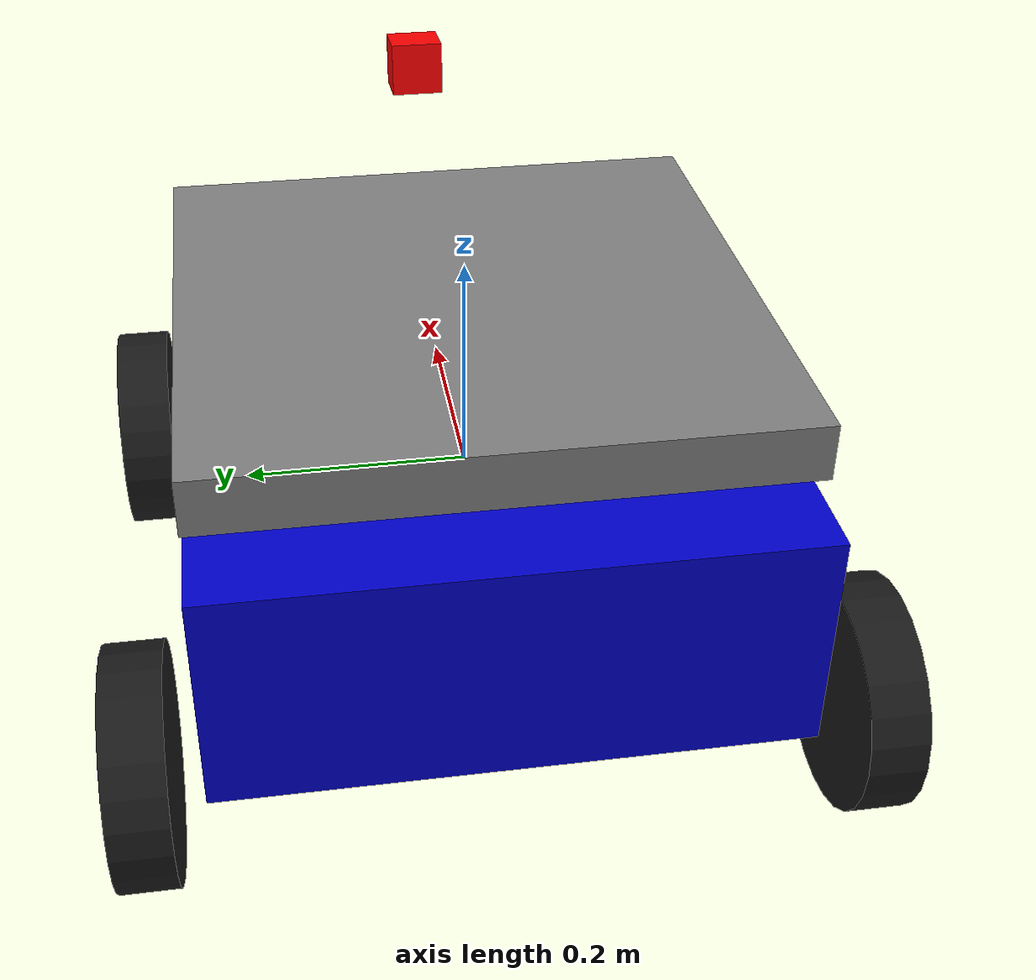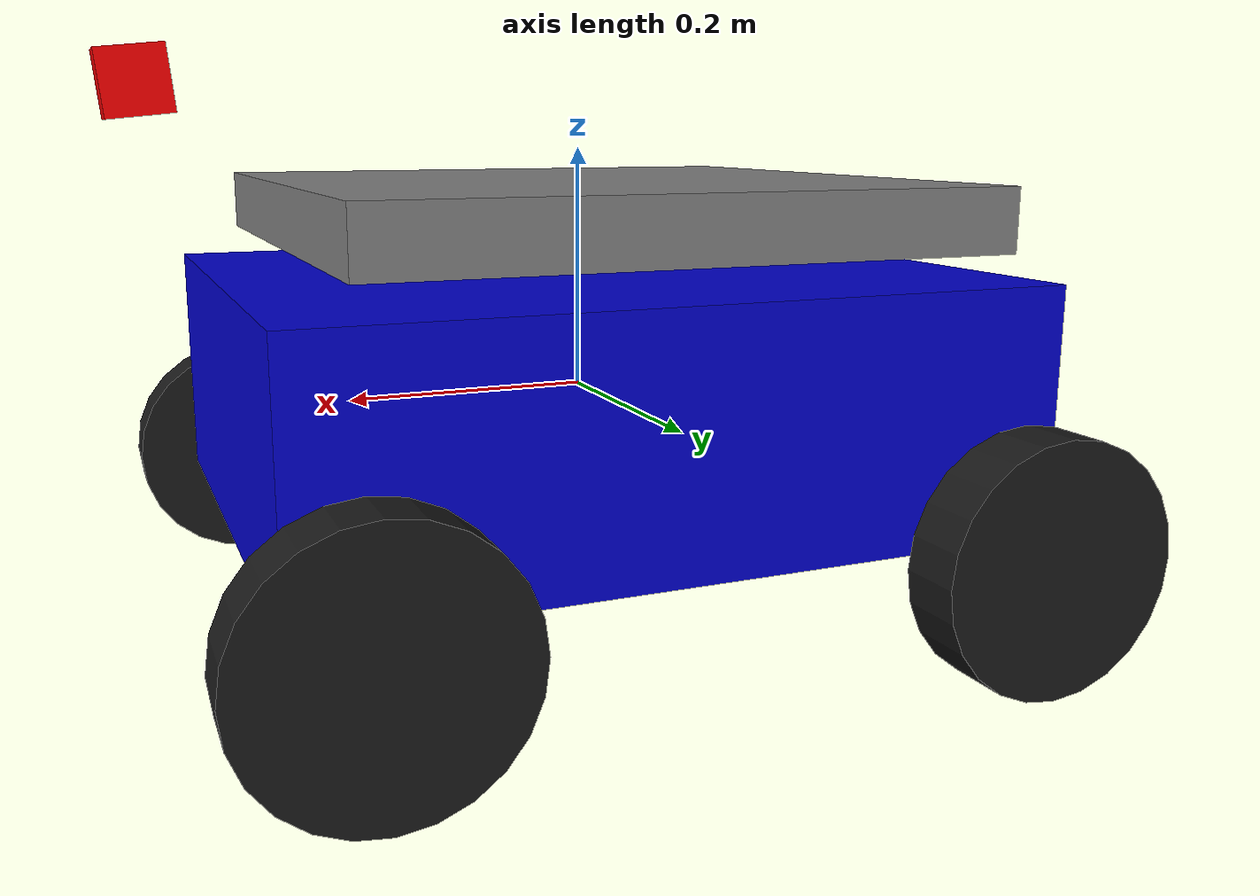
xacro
<?xml version="1.0"?>
<robot xmlns:xacro="http://www.ros.org/wiki/xacro" name="mecanum_robot">

  <!-- Base Link -->
  <link name="base_link">
    <visual>
      <geometry>
        <box size="0.6 0.5 0.2"/>
      </geometry>
      <material name="blue">
        <color rgba="0 0 0.8 1"/>
      </material>
    </visual>
    <collision>
      <geometry>
        <box size="0.6 0.5 0.2"/>
      </geometry>
    </collision>
    <inertial>
      <mass value="20.0"/>
      <inertia ixx="0.4" iyy="0.6" izz="0.8" ixy="0" ixz="0" iyz="0"/>
    </inertial>
  </link>

  <!-- Lift Mechanism -->
  <joint name="lift_joint" type="prismatic">
    <parent link="base_link"/>
    <child link="lift_platform"/>
    <origin xyz="0 0 0.15" rpy="0 0 0"/>
    <axis xyz="0 0 1"/>
    <limit lower="0.0" upper="0.5" effort="1000" velocity="0.2"/>
  </joint>

  <link name="lift_platform">
    <visual>
      <geometry>
        <box size="0.5 0.5 0.05"/>
      </geometry>
      <material name="gray">
        <color rgba="0.5 0.5 0.5 1"/>
      </material>
    </visual>
    <collision>
      <geometry>
        <box size="0.5 0.5 0.05"/>
      </geometry>
    </collision>
    <inertial>
      <mass value="2.0"/>
      <inertia ixx="0.05" iyy="0.05" izz="0.05" ixy="0" ixz="0" iyz="0"/>
    </inertial>
  </link>

  <!-- Camera Link -->
  <joint name="camera_joint" type="fixed">
    <parent link="base_link"/>
    <child link="camera_link"/>
    <origin xyz="0.35 0 0.25" rpy="0 0.1 0"/>
  </joint>

  <link name="camera_link">
    <visual>
      <geometry>
        <box size="0.05 0.05 0.05"/>
      </geometry>
      <material name="red">
        <color rgba="1 0 0 1"/>
      </material>
    </visual>
    <inertial>
      <mass value="0.1"/>
      <inertia ixx="0.001" iyy="0.001" izz="0.001" ixy="0" ixz="0" iyz="0"/>
    </inertial>
  </link>

  <!-- Four Wheels (simplified as cylinders) -->
  <xacro:macro name="wheel" params="prefix x y">
    <link name="${prefix}_wheel">
      <visual>
        <geometry>
          <cylinder radius="0.1" length="0.05"/>
        </geometry>
        <material name="black">
          <color rgba="0.1 0.1 0.1 1"/>
        </material>
      </visual>
      <collision>
        <geometry>
          <cylinder radius="0.1" length="0.05"/>
        </geometry>
      </collision>
      <inertial>
        <mass value="1.0"/>
        <inertia ixx="0.01" iyy="0.01" izz="0.01" ixy="0" ixz="0" iyz="0"/>
      </inertial>
    </link>

    <joint name="${prefix}_wheel_joint" type="continuous">
      <parent link="base_link"/>
      <child link="${prefix}_wheel"/>
      <origin xyz="${x} ${y} -0.1" rpy="1.5708 0 0"/>
      <axis xyz="0 0 1"/>
    </joint>
  </xacro:macro>

  <xacro:wheel prefix="front_left" x="0.25" y="0.3"/>
  <xacro:wheel prefix="front_right" x="0.25" y="-0.3"/>
  <xacro:wheel prefix="rear_left" x="-0.25" y="0.3"/>
  <xacro:wheel prefix="rear_right" x="-0.25" y="-0.3"/>

  <!-- Gazebo Plugins -->

  <!-- Planar Move Plugin (simple mecanum simulation) -->
  <gazebo>
    <plugin name="planar_move" filename="libgazebo_ros_planar_move.so">
      <ros>
        <namespace>/</namespace>
        <remapping>cmd_vel:=cmd_vel</remapping>
        <remapping>odom:=odom</remapping>
      </ros>
      <update_rate>100</update_rate>
      <publish_rate>10</publish_rate>
      <publish_odom>true</publish_odom>
      <publish_odom_tf>true</publish_odom_tf>
      <odometry_frame>odom</odometry_frame>
      <robot_base_frame>base_link</robot_base_frame>
      <covariance_x>0.0001</covariance_x>
      <covariance_y>0.0001</covariance_y>
      <covariance_yaw>0.01</covariance_yaw>
    </plugin>
  </gazebo>

  <!-- Camera Plugin -->
  <gazebo reference="camera_link">
    <sensor type="camera" name="camera">
      <update_rate>30.0</update_rate>
      <camera name="front_camera">
        <horizontal_fov>1.3962634</horizontal_fov>
        <image>
          <width>640</width>
          <height>480</height>
          <format>R8G8B8</format>
        </image>
        <clip>
          <near>0.02</near>
          <far>300</far>
        </clip>
      </camera>
      <plugin name="camera_controller" filename="libgazebo_ros_camera.so">
        <ros>
          <namespace>/</namespace>
          <remapping>~/image_raw:=camera/image_raw</remapping>
          <remapping>~/camera_info:=camera/camera_info</remapping>
        </ros>
        <camera_name>front_camera</camera_name>
        <frame_name>camera_link</frame_name>
      </plugin>
    </sensor>
  </gazebo>

  <!-- Lift Joint Controller -->
  <gazebo>
    <plugin name="lift_control" filename="libgazebo_ros_joint_state_publisher.so">
      <ros>
        <namespace>/</namespace>
        <remapping>~/out:=joint_states</remapping>
      </ros>
      <update_rate>50</update_rate>
      <joint_name>lift_joint</joint_name>
    </plugin>
  </gazebo>

</robot>
